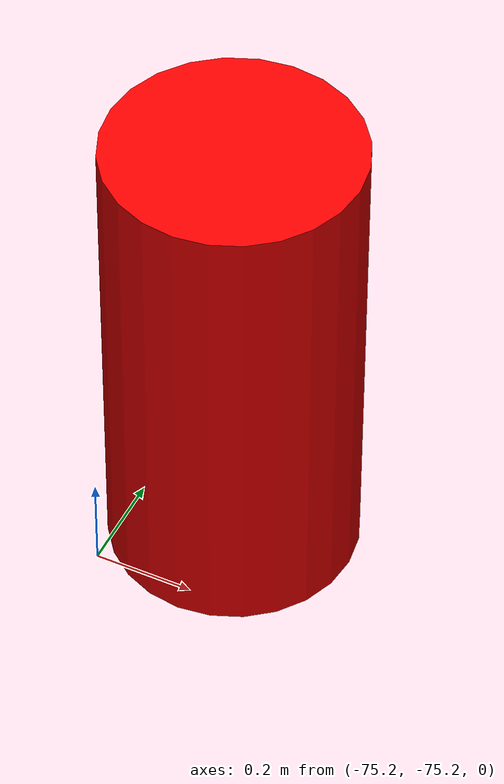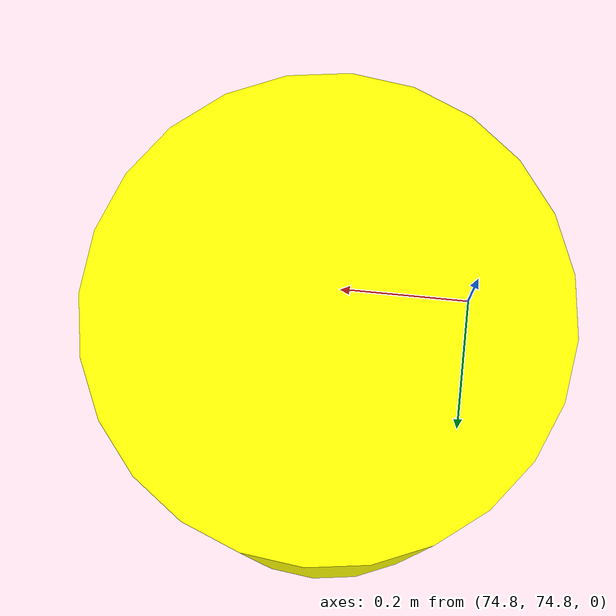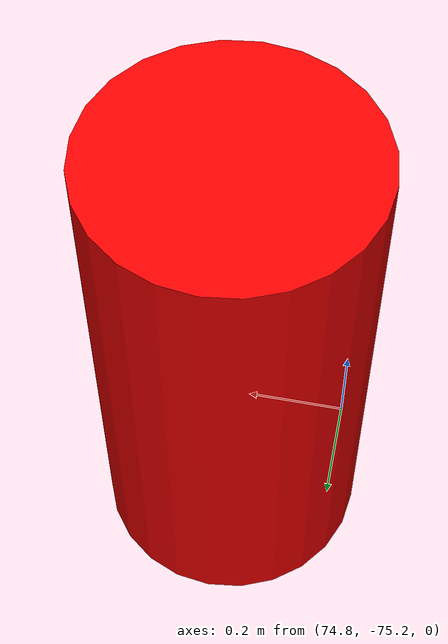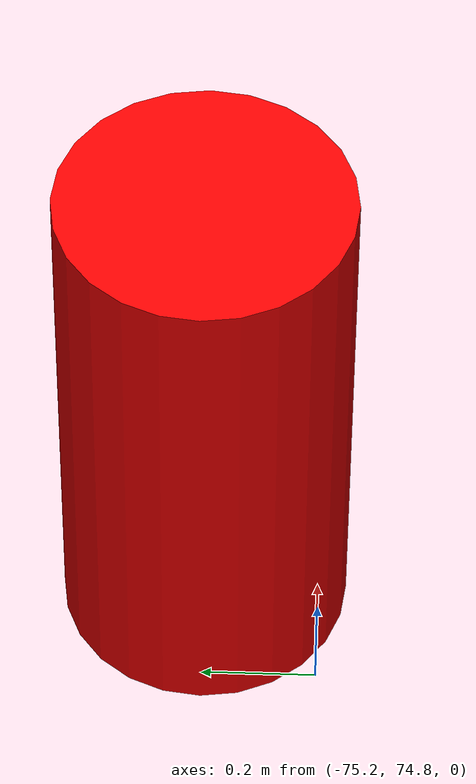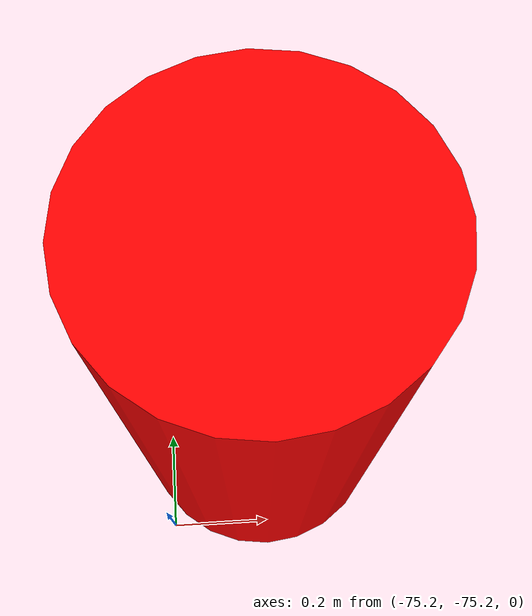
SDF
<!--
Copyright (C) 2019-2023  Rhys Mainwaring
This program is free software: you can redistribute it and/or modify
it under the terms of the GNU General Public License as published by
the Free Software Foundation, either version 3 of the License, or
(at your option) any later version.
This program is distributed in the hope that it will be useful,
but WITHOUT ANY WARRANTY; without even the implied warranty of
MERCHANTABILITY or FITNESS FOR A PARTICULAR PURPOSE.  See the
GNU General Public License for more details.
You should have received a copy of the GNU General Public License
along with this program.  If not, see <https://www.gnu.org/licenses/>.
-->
<sdf version="1.6">
 <world name="waves">
  <physics name="1ms" type="ignored">
   <max_step_size>0.001</max_step_size>
   <real_time_factor>1</real_time_factor>
  </physics>
  <plugin filename="gz-sim-physics-system" name="gz::sim::systems::Physics"/>
  <plugin filename="gz-sim-sensors-system" name="gz::sim::systems::Sensors">
   <render_engine>ogre2</render_engine>
   <background_color>0.8 0.8 0.8</background_color>
  </plugin>
  <plugin filename="gz-sim-scene-broadcaster-system" name="gz::sim::systems::SceneBroadcaster"/>
  <plugin filename="gz-sim-user-commands-system" name="gz::sim::systems::UserCommands"/>
  <plugin filename="gz-sim-imu-system" name="gz::sim::systems::Imu"/>
  <plugin filename="gz-sim-navsat-system" name="gz::sim::systems::NavSat"/>
  <plugin filename="gz-sim-wind-effects-system" name="gz::sim::systems::WindEffects">
   <force_approximation_scaling_factor>0.1</force_approximation_scaling_factor>
  </plugin>
  <plugin filename="asv_sim2-anemometer-system" name="gz::sim::systems::Anemometer"/>
  <plugin filename="asv_sim2-wind-system" name="gz::sim::systems::Wind"><topic>/wind</topic></plugin>
  <scene><ambient>1.0 1.0 1.0</ambient><background>0.8 0.8 0.8</background></scene>
  <spherical_coordinates>
   <latitude_deg>51.566151</latitude_deg>
   <longitude_deg>-4.034345</longitude_deg>
   <elevation>10.0</elevation>
   <heading_deg>0</heading_deg>
   <surface_model>EARTH_WGS84</surface_model>
  </spherical_coordinates>
  <light type="directional" name="sun">
   <pose>0 0 10 0 0 0</pose>
   <diffuse>0.8 0.8 0.8 1</diffuse>
   <specular>0.6 0.6 0.6 1</specular>
   <direction>-0.5 0.1 -0.9</direction>
  </light>
  <wind><linear_velocity>7.07 7.07 0</linear_velocity></wind>
  <model name="buoy_wp1">
   <pose>-75 -75 0.5 0 0 0</pose>
   <enable_wind>true</enable_wind>
   <link name="base_link">
    <inertial>
     <mass>5</mass>
     <inertia>
      <ixx>0.494791667</ixx>
      <ixy>0</ixy>
      <ixz>0</ixz>
      <iyy>0.494791667</iyy>
      <iyz>0</iyz>
      <izz>0.15625</izz>
     </inertia>
    </inertial>
    <collision name="collision">
     <geometry><cylinder><radius>0.25</radius><length>1.0</length></cylinder></geometry>
    </collision>
    <visual name="visual">
     <geometry><cylinder><radius>0.25</radius><length>1.0</length></cylinder></geometry>
     <material><ambient>1 0 0 1</ambient><diffuse>1 0 0 1</diffuse><specular>0.1 0.1 0.1 1</specular></material>
    </visual>
    <sensor name="navsat_sensor" type="navsat"><always_on>1</always_on><update_rate>30</update_rate></sensor>
   </link>
   <link name="bridle_link">
    <pose>0 0 -0.5 0 0 0</pose>
    <inertial>
     <mass>10</mass>
     <inertia><ixx>0.01000</ixx><ixy>0</ixy><ixz>0</ixz><iyy>0.01000</iyy><iyz>0</iyz><izz>0.01000</izz></inertia>
    </inertial>
    <collision name="collision"><geometry><sphere><radius>0.1</radius></sphere></geometry></collision>
    <visual name="visual">
     <geometry><sphere><radius>0.1</radius></sphere></geometry>
     <material>
      <ambient>0.5 0.5 0.5 1</ambient>
      <diffuse>0.5 0.5 0.5 1</diffuse>
      <specular>0.1 0.1 0.1 1</specular>
     </material>
    </visual>
   </link>
   <joint name="bridle_joint" type="revolute">
    <child>bridle_link</child>
    <parent>base_link</parent>
    <axis>
     <xyz>0 0 1</xyz>
     <limit><lower>0</lower><upper>0</upper></limit>
     <dynamics><damping>1.0</damping></dynamics>
    </axis>
   </joint>
   <plugin filename="gz-waves1-hydrodynamics-system" name="gz::sim::systems::Hydrodynamics">
    <enable>buoy_wp1::base_link</enable>
   </plugin>
   <plugin filename="asv_sim2-mooring-system" name="gz::sim::systems::Mooring">
    <link_name>bridle_link</link_name>
    <anchor_position>-75 -75 -10</anchor_position>
    <chain_length>15.0</chain_length>
    <chain_mass_per_metre>1.0</chain_mass_per_metre>
   </plugin>
  </model>
  <model name="buoy_wp2">
   <pose>75 -75 0.5 0 0 0</pose>
   <enable_wind>true</enable_wind>
   <link name="base_link">
    <inertial>
     <mass>5</mass>
     <inertia>
      <ixx>0.494791667</ixx>
      <ixy>0</ixy>
      <ixz>0</ixz>
      <iyy>0.494791667</iyy>
      <iyz>0</iyz>
      <izz>0.15625</izz>
     </inertia>
    </inertial>
    <collision name="collision">
     <geometry><cylinder><radius>0.25</radius><length>1.0</length></cylinder></geometry>
    </collision>
    <visual name="visual">
     <geometry><cylinder><radius>0.25</radius><length>1.0</length></cylinder></geometry>
     <material><ambient>1 0 0 1</ambient><diffuse>1 0 0 1</diffuse><specular>0.1 0.1 0.1 1</specular></material>
    </visual>
    <sensor name="navsat_sensor" type="navsat"><always_on>1</always_on><update_rate>30</update_rate></sensor>
   </link>
   <link name="bridle_link">
    <pose>0 0 -0.5 0 0 0</pose>
    <inertial>
     <mass>10</mass>
     <inertia><ixx>0.01000</ixx><ixy>0</ixy><ixz>0</ixz><iyy>0.01000</iyy><iyz>0</iyz><izz>0.01000</izz></inertia>
    </inertial>
    <collision name="collision"><geometry><sphere><radius>0.1</radius></sphere></geometry></collision>
    <visual name="visual">
     <geometry><sphere><radius>0.1</radius></sphere></geometry>
     <material>
      <ambient>0.5 0.5 0.5 1</ambient>
      <diffuse>0.5 0.5 0.5 1</diffuse>
      <specular>0.1 0.1 0.1 1</specular>
     </material>
    </visual>
   </link>
   <joint name="bridle_joint" type="revolute">
    <child>bridle_link</child>
    <parent>base_link</parent>
    <axis>
     <xyz>0 0 1</xyz>
     <limit><lower>0</lower><upper>0</upper></limit>
     <dynamics><damping>1.0</damping></dynamics>
    </axis>
   </joint>
   <plugin filename="gz-waves1-hydrodynamics-system" name="gz::sim::systems::Hydrodynamics">
    <enable>buoy_wp2::base_link</enable>
   </plugin>
   <plugin filename="asv_sim2-mooring-system" name="gz::sim::systems::Mooring">
    <link_name>bridle_link</link_name>
    <anchor_position>75 -75 -10</anchor_position>
    <chain_length>15.0</chain_length>
    <chain_mass_per_metre>1.0</chain_mass_per_metre>
   </plugin>
  </model>
  <model name="buoy_wp3">
   <pose>-75 75 0.5 0 0 0</pose>
   <enable_wind>true</enable_wind>
   <link name="base_link">
    <inertial>
     <mass>5</mass>
     <inertia>
      <ixx>0.494791667</ixx>
      <ixy>0</ixy>
      <ixz>0</ixz>
      <iyy>0.494791667</iyy>
      <iyz>0</iyz>
      <izz>0.15625</izz>
     </inertia>
    </inertial>
    <collision name="collision">
     <geometry><cylinder><radius>0.25</radius><length>1.0</length></cylinder></geometry>
    </collision>
    <visual name="visual">
     <geometry><cylinder><radius>0.25</radius><length>1.0</length></cylinder></geometry>
     <material><ambient>1 0 0 1</ambient><diffuse>1 0 0 1</diffuse><specular>0.1 0.1 0.1 1</specular></material>
    </visual>
    <sensor name="navsat_sensor" type="navsat"><always_on>1</always_on><update_rate>30</update_rate></sensor>
   </link>
   <link name="bridle_link">
    <pose>0 0 -0.5 0 0 0</pose>
    <inertial>
     <mass>10</mass>
     <inertia><ixx>0.01000</ixx><ixy>0</ixy><ixz>0</ixz><iyy>0.01000</iyy><iyz>0</iyz><izz>0.01000</izz></inertia>
    </inertial>
    <collision name="collision"><geometry><sphere><radius>0.1</radius></sphere></geometry></collision>
    <visual name="visual">
     <geometry><sphere><radius>0.1</radius></sphere></geometry>
     <material>
      <ambient>0.5 0.5 0.5 1</ambient>
      <diffuse>0.5 0.5 0.5 1</diffuse>
      <specular>0.1 0.1 0.1 1</specular>
     </material>
    </visual>
   </link>
   <joint name="bridle_joint" type="revolute">
    <child>bridle_link</child>
    <parent>base_link</parent>
    <axis>
     <xyz>0 0 1</xyz>
     <limit><lower>0</lower><upper>0</upper></limit>
     <dynamics><damping>1.0</damping></dynamics>
    </axis>
   </joint>
   <plugin filename="gz-waves1-hydrodynamics-system" name="gz::sim::systems::Hydrodynamics">
    <enable>buoy_wp3::base_link</enable>
   </plugin>
   <plugin filename="asv_sim2-mooring-system" name="gz::sim::systems::Mooring">
    <link_name>bridle_link</link_name>
    <anchor_position>-75 75 -10</anchor_position>
    <chain_length>15.0</chain_length>
    <chain_mass_per_metre>1.0</chain_mass_per_metre>
   </plugin>
  </model>
  <model name="buoy_wp4">
   <pose>75 75 0.5 0 0 0</pose>
   <enable_wind>true</enable_wind>
   <link name="base_link">
    <inertial>
     <mass>5</mass>
     <inertia>
      <ixx>0.494791667</ixx>
      <ixy>0</ixy>
      <ixz>0</ixz>
      <iyy>0.494791667</iyy>
      <iyz>0</iyz>
      <izz>0.15625</izz>
     </inertia>
    </inertial>
    <collision name="collision">
     <geometry><cylinder><radius>0.25</radius><length>1.0</length></cylinder></geometry>
    </collision>
    <visual name="visual">
     <geometry><cylinder><radius>0.25</radius><length>1.0</length></cylinder></geometry>
     <material><ambient>1 1 0 1</ambient><diffuse>1 1 0 1</diffuse><specular>0.1 0.1 0.1 1</specular></material>
    </visual>
    <sensor name="navsat_sensor" type="navsat"><always_on>1</always_on><update_rate>30</update_rate></sensor>
   </link>
   <link name="bridle_link">
    <pose>0 0 -0.5 0 0 0</pose>
    <inertial>
     <mass>10</mass>
     <inertia><ixx>0.01000</ixx><ixy>0</ixy><ixz>0</ixz><iyy>0.01000</iyy><iyz>0</iyz><izz>0.01000</izz></inertia>
    </inertial>
    <collision name="collision"><geometry><sphere><radius>0.1</radius></sphere></geometry></collision>
    <visual name="visual">
     <geometry><sphere><radius>0.1</radius></sphere></geometry>
     <material>
      <ambient>0.5 0.5 0.5 1</ambient>
      <diffuse>0.5 0.5 0.5 1</diffuse>
      <specular>0.1 0.1 0.1 1</specular>
     </material>
    </visual>
   </link>
   <joint name="bridle_joint" type="revolute">
    <child>bridle_link</child>
    <parent>base_link</parent>
    <axis>
     <xyz>0 0 1</xyz>
     <limit><lower>0</lower><upper>0</upper></limit>
     <dynamics><damping>1.0</damping></dynamics>
    </axis>
   </joint>
   <plugin filename="gz-waves1-hydrodynamics-system" name="gz::sim::systems::Hydrodynamics">
    <enable>buoy_wp4::base_link</enable>
   </plugin>
   <plugin filename="asv_sim2-mooring-system" name="gz::sim::systems::Mooring">
    <link_name>bridle_link</link_name>
    <anchor_position>75 75 -10</anchor_position>
    <chain_length>15.0</chain_length>
    <chain_mass_per_metre>1.0</chain_mass_per_metre>
   </plugin>
  </model>
 </world>
</sdf>
